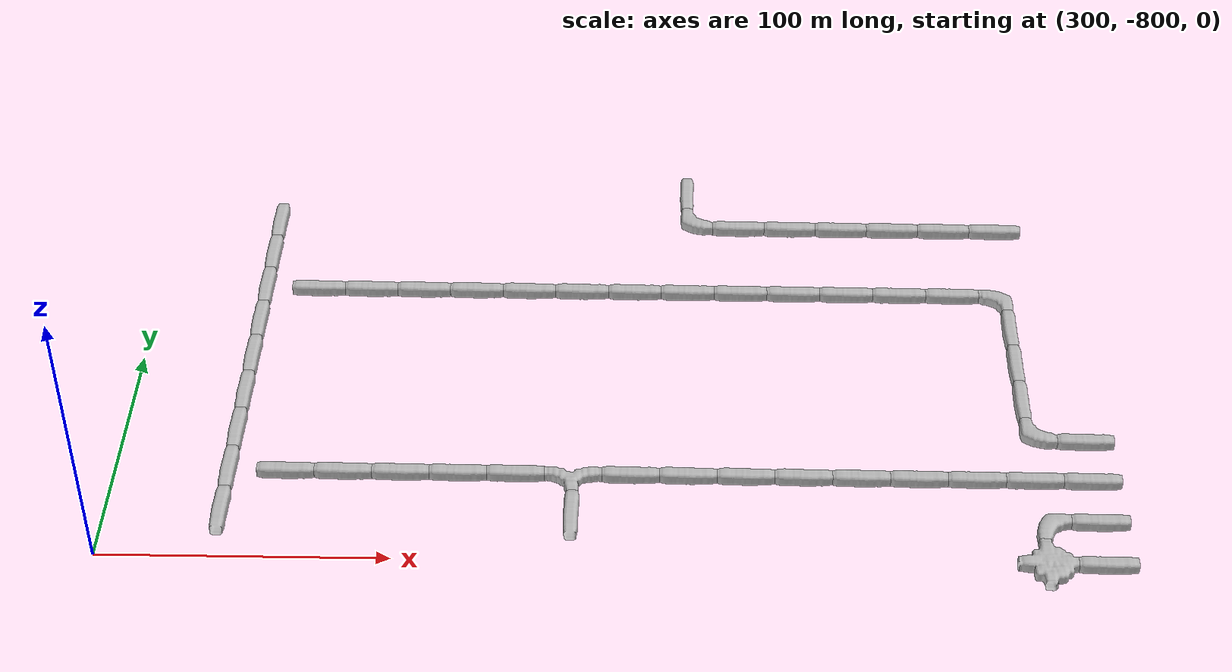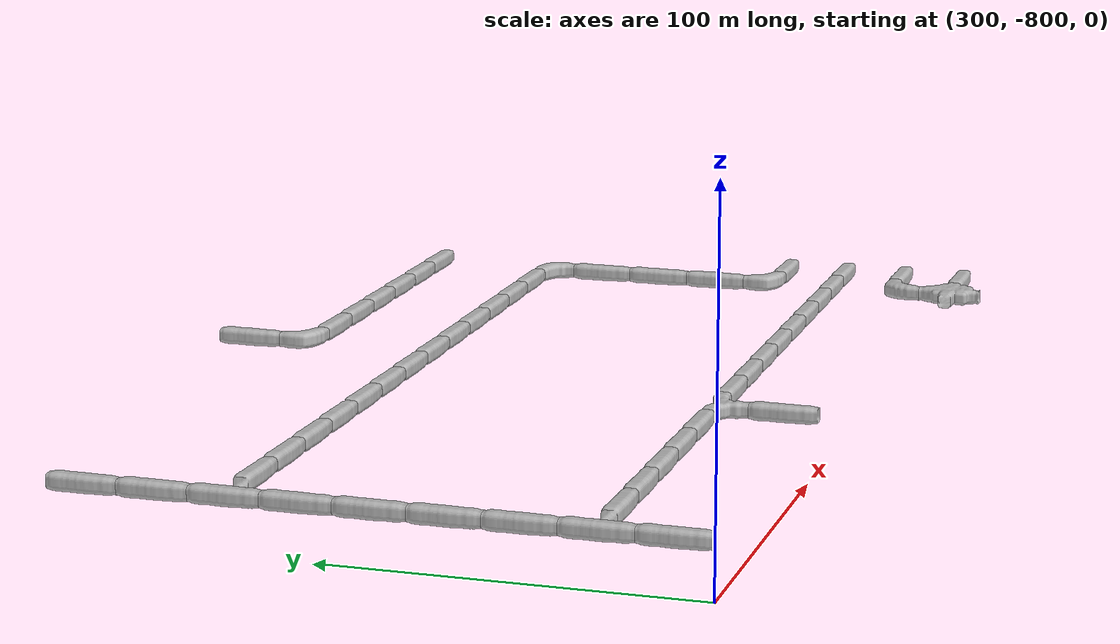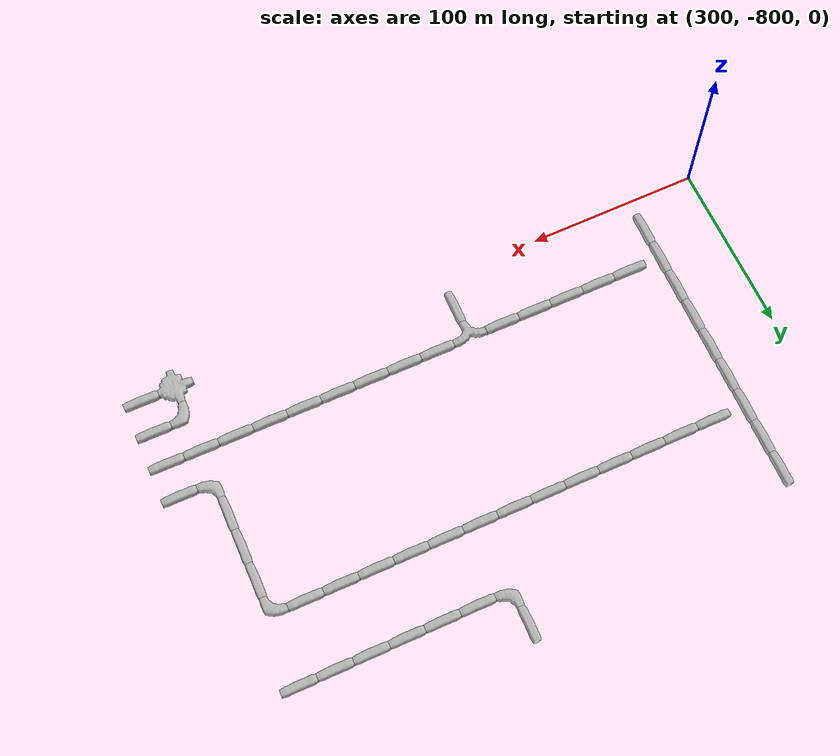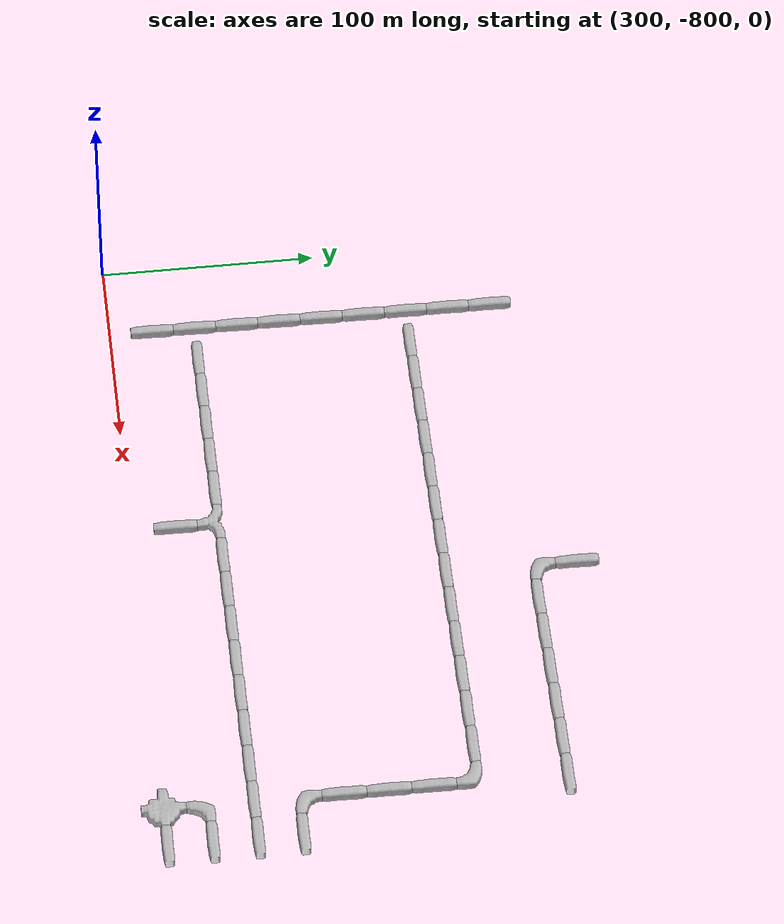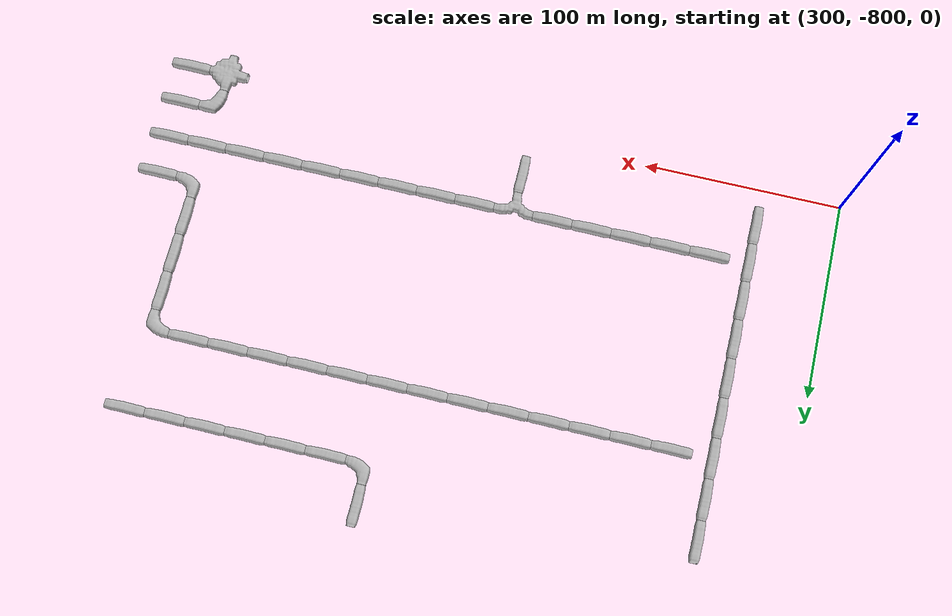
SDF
<sdf version="1.6">
 <world name="cave_32000_32">
  <include>
   <static>true</static>
   <name>cave_31_-31</name>
   <pose>620 -620 0 0 0 1.5707963267948966</pose>
   <uri>model://cave_straight_20m</uri>
  </include>
  <include>
   <static>true</static>
   <name>cave_30_-31</name>
   <pose>600 -620 0 0 0 1.5707963267948966</pose>
   <uri>model://cave_straight_20m</uri>
  </include>
  <include>
   <static>true</static>
   <name>cave_29_-31</name>
   <pose>580 -620 0 0 0 1.5707963267948966</pose>
   <uri>model://cave_straight_20m</uri>
  </include>
  <include>
   <static>true</static>
   <name>cave_28_-31</name>
   <pose>560 -620 0 0 0 1.5707963267948966</pose>
   <uri>model://cave_straight_20m</uri>
  </include>
  <include>
   <static>true</static>
   <name>cave_27_-31</name>
   <pose>540 -620 0 0 0 1.5707963267948966</pose>
   <uri>model://cave_straight_20m</uri>
  </include>
  <include>
   <static>true</static>
   <name>cave_26_-31</name>
   <pose>520 -620 0 0 0 1.5707963267948966</pose>
   <uri>model://cave_straight_20m</uri>
  </include>
  <include>
   <static>true</static>
   <name>cave_25_-31</name>
   <pose>500 -620 0 0 0 0.0</pose>
   <uri>model://cave_L_20m</uri>
  </include>
  <include>
   <static>true</static>
   <name>cave_25_-30</name>
   <pose>500 -600 0 0 0 0.0</pose>
   <uri>model://cave_straight_20m</uri>
  </include>
  <include>
   <static>true</static>
   <name>cave_17_-31</name>
   <pose>340 -620 0 0 0 0.0</pose>
   <uri>model://cave_straight_20m</uri>
  </include>
  <include>
   <static>true</static>
   <name>cave_17_-32</name>
   <pose>340 -640 0 0 0 0.0</pose>
   <uri>model://cave_straight_20m</uri>
  </include>
  <include>
   <static>true</static>
   <name>cave_17_-33</name>
   <pose>340 -660 0 0 0 0.0</pose>
   <uri>model://cave_straight_20m</uri>
  </include>
  <include>
   <static>true</static>
   <name>cave_17_-34</name>
   <pose>340 -680 0 0 0 0.0</pose>
   <uri>model://cave_straight_20m</uri>
  </include>
  <include>
   <static>true</static>
   <name>cave_17_-35</name>
   <pose>340 -700 0 0 0 0.0</pose>
   <uri>model://cave_straight_20m</uri>
  </include>
  <include>
   <static>true</static>
   <name>cave_17_-36</name>
   <pose>340 -720 0 0 0 0.0</pose>
   <uri>model://cave_straight_20m</uri>
  </include>
  <include>
   <static>true</static>
   <name>cave_17_-37</name>
   <pose>340 -740 0 0 0 0.0</pose>
   <uri>model://cave_straight_20m</uri>
  </include>
  <include>
   <static>true</static>
   <name>cave_17_-38</name>
   <pose>340 -760 0 0 0 0.0</pose>
   <uri>model://cave_straight_20m</uri>
  </include>
  <include>
   <static>true</static>
   <name>cave_17_-39</name>
   <pose>340 -780 0 0 0 0.0</pose>
   <uri>model://cave_straight_20m</uri>
  </include>
  <include>
   <static>true</static>
   <name>cave_31_-40</name>
   <pose>620 -800 0 0 0 -1.5707963267948966</pose>
   <uri>model://cave_4way_20m</uri>
  </include>
  <include>
   <static>true</static>
   <name>cave_32_-40</name>
   <pose>640 -800 0 0 0 1.5707963267948966</pose>
   <uri>model://cave_straight_20m</uri>
  </include>
  <include>
   <static>true</static>
   <name>cave_32_-38</name>
   <pose>640 -760 0 0 0 1.5707963267948966</pose>
   <uri>model://cave_straight_20m</uri>
  </include>
  <include>
   <static>true</static>
   <name>cave_31_-38</name>
   <pose>620 -760 0 0 0 1.5707963267948966</pose>
   <uri>model://cave_straight_20m</uri>
  </include>
  <include>
   <static>true</static>
   <name>cave_30_-38</name>
   <pose>600 -760 0 0 0 1.5707963267948966</pose>
   <uri>model://cave_straight_20m</uri>
  </include>
  <include>
   <static>true</static>
   <name>cave_29_-38</name>
   <pose>580 -760 0 0 0 1.5707963267948966</pose>
   <uri>model://cave_straight_20m</uri>
  </include>
  <include>
   <static>true</static>
   <name>cave_28_-38</name>
   <pose>560 -760 0 0 0 1.5707963267948966</pose>
   <uri>model://cave_straight_20m</uri>
  </include>
  <include>
   <static>true</static>
   <name>cave_27_-38</name>
   <pose>540 -760 0 0 0 1.5707963267948966</pose>
   <uri>model://cave_straight_20m</uri>
  </include>
  <include>
   <static>true</static>
   <name>cave_26_-38</name>
   <pose>520 -760 0 0 0 1.5707963267948966</pose>
   <uri>model://cave_straight_20m</uri>
  </include>
  <include>
   <static>true</static>
   <name>cave_25_-38</name>
   <pose>500 -760 0 0 0 1.5707963267948966</pose>
   <uri>model://cave_straight_20m</uri>
  </include>
  <include>
   <static>true</static>
   <name>cave_24_-38</name>
   <pose>480 -760 0 0 0 1.5707963267948966</pose>
   <uri>model://cave_straight_20m</uri>
  </include>
  <include>
   <static>true</static>
   <name>cave_23_-38</name>
   <pose>460 -760 0 0 0 3.141592653589793</pose>
   <uri>model://cave_3way_20m</uri>
  </include>
  <include>
   <static>true</static>
   <name>cave_23_-39</name>
   <pose>460 -780 0 0 0 0.0</pose>
   <uri>model://cave_straight_20m</uri>
  </include>
  <include>
   <static>true</static>
   <name>cave_22_-38</name>
   <pose>440 -760 0 0 0 1.5707963267948966</pose>
   <uri>model://cave_straight_20m</uri>
  </include>
  <include>
   <static>true</static>
   <name>cave_21_-38</name>
   <pose>420 -760 0 0 0 1.5707963267948966</pose>
   <uri>model://cave_straight_20m</uri>
  </include>
  <include>
   <static>true</static>
   <name>cave_20_-38</name>
   <pose>400 -760 0 0 0 1.5707963267948966</pose>
   <uri>model://cave_straight_20m</uri>
  </include>
  <include>
   <static>true</static>
   <name>cave_19_-38</name>
   <pose>380 -760 0 0 0 1.5707963267948966</pose>
   <uri>model://cave_straight_20m</uri>
  </include>
  <include>
   <static>true</static>
   <name>cave_18_-38</name>
   <pose>360 -760 0 0 0 1.5707963267948966</pose>
   <uri>model://cave_straight_20m</uri>
  </include>
  <include>
   <static>true</static>
   <name>cave_32_-37</name>
   <pose>640 -740 0 0 0 1.5707963267948966</pose>
   <uri>model://cave_straight_20m</uri>
  </include>
  <include>
   <static>true</static>
   <name>cave_31_-37</name>
   <pose>620 -740 0 0 0 0.0</pose>
   <uri>model://cave_L_20m</uri>
  </include>
  <include>
   <static>true</static>
   <name>cave_31_-36</name>
   <pose>620 -720 0 0 0 0.0</pose>
   <uri>model://cave_straight_20m</uri>
  </include>
  <include>
   <static>true</static>
   <name>cave_31_-35</name>
   <pose>620 -700 0 0 0 0.0</pose>
   <uri>model://cave_straight_20m</uri>
  </include>
  <include>
   <static>true</static>
   <name>cave_31_-34</name>
   <pose>620 -680 0 0 0 0.0</pose>
   <uri>model://cave_straight_20m</uri>
  </include>
  <include>
   <static>true</static>
   <name>cave_31_-33</name>
   <pose>620 -660 0 0 0 3.141592653589793</pose>
   <uri>model://cave_L_20m</uri>
  </include>
  <include>
   <static>true</static>
   <name>cave_30_-33</name>
   <pose>600 -660 0 0 0 1.5707963267948966</pose>
   <uri>model://cave_straight_20m</uri>
  </include>
  <include>
   <static>true</static>
   <name>cave_29_-33</name>
   <pose>580 -660 0 0 0 1.5707963267948966</pose>
   <uri>model://cave_straight_20m</uri>
  </include>
  <include>
   <static>true</static>
   <name>cave_28_-33</name>
   <pose>560 -660 0 0 0 1.5707963267948966</pose>
   <uri>model://cave_straight_20m</uri>
  </include>
  <include>
   <static>true</static>
   <name>cave_27_-33</name>
   <pose>540 -660 0 0 0 1.5707963267948966</pose>
   <uri>model://cave_straight_20m</uri>
  </include>
  <include>
   <static>true</static>
   <name>cave_26_-33</name>
   <pose>520 -660 0 0 0 1.5707963267948966</pose>
   <uri>model://cave_straight_20m</uri>
  </include>
  <include>
   <static>true</static>
   <name>cave_25_-33</name>
   <pose>500 -660 0 0 0 1.5707963267948966</pose>
   <uri>model://cave_straight_20m</uri>
  </include>
  <include>
   <static>true</static>
   <name>cave_24_-33</name>
   <pose>480 -660 0 0 0 1.5707963267948966</pose>
   <uri>model://cave_straight_20m</uri>
  </include>
  <include>
   <static>true</static>
   <name>cave_23_-33</name>
   <pose>460 -660 0 0 0 1.5707963267948966</pose>
   <uri>model://cave_straight_20m</uri>
  </include>
  <include>
   <static>true</static>
   <name>cave_22_-33</name>
   <pose>440 -660 0 0 0 1.5707963267948966</pose>
   <uri>model://cave_straight_20m</uri>
  </include>
  <include>
   <static>true</static>
   <name>cave_21_-33</name>
   <pose>420 -660 0 0 0 1.5707963267948966</pose>
   <uri>model://cave_straight_20m</uri>
  </include>
  <include>
   <static>true</static>
   <name>cave_20_-33</name>
   <pose>400 -660 0 0 0 1.5707963267948966</pose>
   <uri>model://cave_straight_20m</uri>
  </include>
  <include>
   <static>true</static>
   <name>cave_19_-33</name>
   <pose>380 -660 0 0 0 1.5707963267948966</pose>
   <uri>model://cave_straight_20m</uri>
  </include>
  <include>
   <static>true</static>
   <name>cave_18_-33</name>
   <pose>360 -660 0 0 0 1.5707963267948966</pose>
   <uri>model://cave_straight_20m</uri>
  </include>
  <include>
   <static>true</static>
   <name>cave_31_-39</name>
   <pose>620 -780 0 0 0 -1.5707963267948966</pose>
   <uri>model://cave_L_20m</uri>
  </include>
  <include>
   <static>true</static>
   <name>cave_32_-39</name>
   <pose>640 -780 0 0 0 1.5707963267948966</pose>
   <uri>model://cave_straight_20m</uri>
  </include>
 </world>
</sdf>
